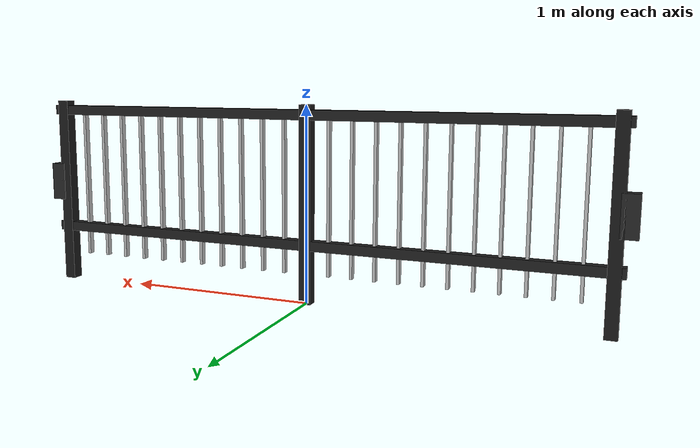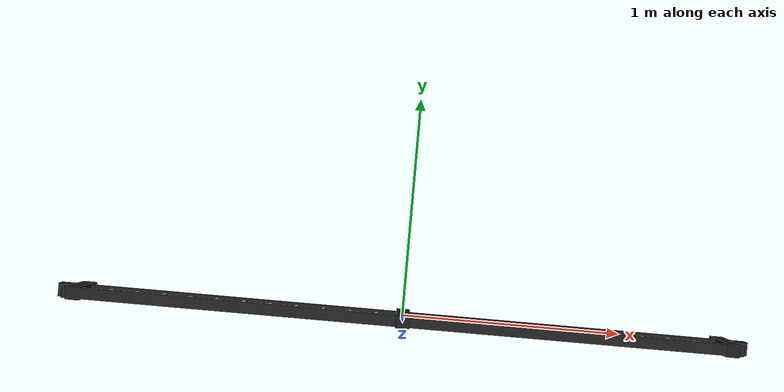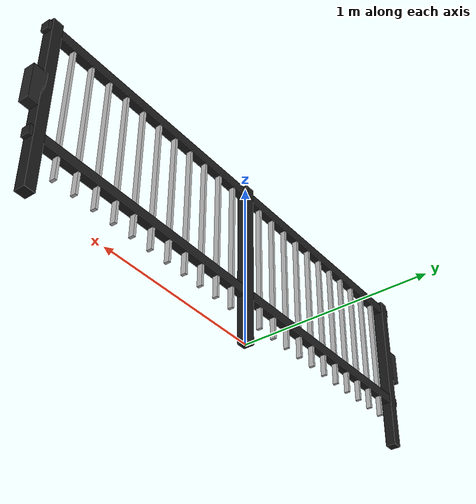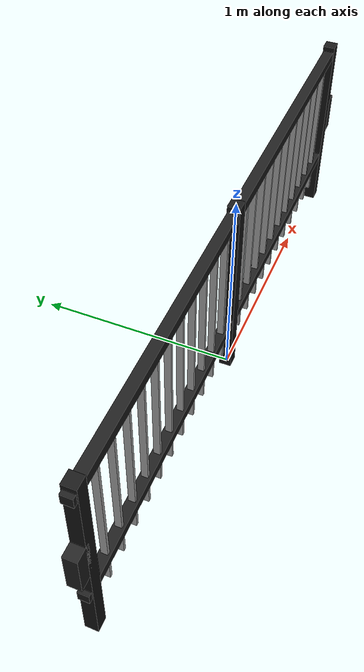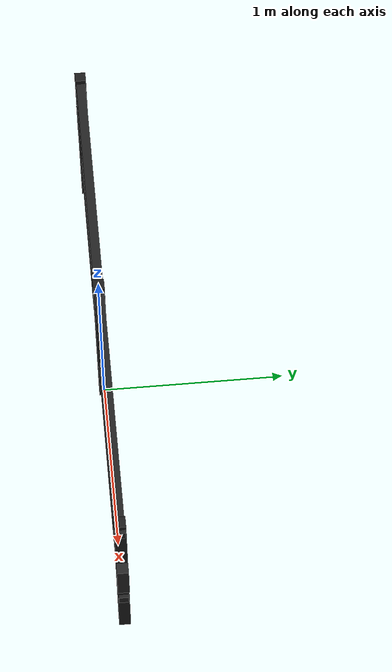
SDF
<?xml version="1.0"?>
<sdf version="1.7">
  <model name="guardrail_panel">
    <static>true</static>

    <link name="guardrail_link">
      <pose>0 0 0 0 0 0</pose>

      <collision name="col_top_rail">
        <pose>0 0 0.95 0 0 0</pose>
        <geometry>
          <box><size>3.00 0.05 0.05</size></box>
        </geometry>
        <surface>
          <friction>
            <ode>
              <mu>1.2</mu>
              <mu2>1.2</mu2>
            </ode>
          </friction>
          <contact>
            <ode>
              <kp>1000000</kp>
              <kd>10</kd>
            </ode>
          </contact>
        </surface>
      </collision>

      <collision name="col_bottom_rail">
        <pose>0 0 0.30 0 0 0</pose>
        <geometry>
          <box><size>3.00 0.05 0.05</size></box>
        </geometry>
      </collision>

      <collision name="col_post_left">
        <pose>-1.45 0 0.50 0 0 0</pose>
        <geometry>
          <box><size>0.06 0.06 1.00</size></box>
        </geometry>
      </collision>

      <collision name="col_post_mid">
        <pose>0 0 0.50 0 0 0</pose>
        <geometry>
          <box><size>0.06 0.06 1.00</size></box>
        </geometry>
      </collision>

      <collision name="col_post_right">
        <pose>1.45 0 0.50 0 0 0</pose>
        <geometry>
          <box><size>0.06 0.06 1.00</size></box>
        </geometry>
      </collision>

      <visual name="vis_top_rail">
        <pose>0 0 0.95 0 0 0</pose>
        <geometry><box><size>3.00 0.05 0.05</size></box></geometry>
        <material>
          <ambient>0.06 0.06 0.06 1</ambient>
          <diffuse>0.12 0.12 0.12 1</diffuse>
          <specular>0.20 0.20 0.20 1</specular>
          <emissive>0 0 0 1</emissive>
        </material>
      </visual>

      <visual name="vis_bottom_rail">
        <pose>0 0 0.30 0 0 0</pose>
        <geometry><box><size>3.00 0.05 0.05</size></box></geometry>
        <material>
          <ambient>0.06 0.06 0.06 1</ambient>
          <diffuse>0.12 0.12 0.12 1</diffuse>
          <specular>0.20 0.20 0.20 1</specular>
        </material>
      </visual>

      <visual name="vis_post_left">
        <pose>-1.45 0 0.50 0 0 0</pose>
        <geometry><box><size>0.06 0.06 1.00</size></box></geometry>
        <material>
          <ambient>0.05 0.05 0.05 1</ambient>
          <diffuse>0.10 0.10 0.10 1</diffuse>
        </material>
      </visual>
      <visual name="vis_post_mid">
        <pose>0 0 0.50 0 0 0</pose>
        <geometry><box><size>0.06 0.06 1.00</size></box></geometry>
        <material>
          <ambient>0.05 0.05 0.05 1</ambient>
          <diffuse>0.10 0.10 0.10 1</diffuse>
        </material>
      </visual>
      <visual name="vis_post_right">
        <pose>1.45 0 0.50 0 0 0</pose>
        <geometry><box><size>0.06 0.06 1.00</size></box></geometry>
        <material>
          <ambient>0.05 0.05 0.05 1</ambient>
          <diffuse>0.10 0.10 0.10 1</diffuse>
        </material>
      </visual>

      <visual name="vis_bar_01"><pose>-1.32 0 0.55 0 0 0</pose><geometry><box><size>0.015 0.03 0.80</size></box></geometry></visual>
      <visual name="vis_bar_02"><pose>-1.20 0 0.55 0 0 0</pose><geometry><box><size>0.015 0.03 0.80</size></box></geometry></visual>
      <visual name="vis_bar_03"><pose>-1.08 0 0.55 0 0 0</pose><geometry><box><size>0.015 0.03 0.80</size></box></geometry></visual>
      <visual name="vis_bar_04"><pose>-0.96 0 0.55 0 0 0</pose><geometry><box><size>0.015 0.03 0.80</size></box></geometry></visual>
      <visual name="vis_bar_05"><pose>-0.84 0 0.55 0 0 0</pose><geometry><box><size>0.015 0.03 0.80</size></box></geometry></visual>
      <visual name="vis_bar_06"><pose>-0.72 0 0.55 0 0 0</pose><geometry><box><size>0.015 0.03 0.80</size></box></geometry></visual>
      <visual name="vis_bar_07"><pose>-0.60 0 0.55 0 0 0</pose><geometry><box><size>0.015 0.03 0.80</size></box></geometry></visual>
      <visual name="vis_bar_08"><pose>-0.48 0 0.55 0 0 0</pose><geometry><box><size>0.015 0.03 0.80</size></box></geometry></visual>
      <visual name="vis_bar_09"><pose>-0.36 0 0.55 0 0 0</pose><geometry><box><size>0.015 0.03 0.80</size></box></geometry></visual>
      <visual name="vis_bar_10"><pose>-0.24 0 0.55 0 0 0</pose><geometry><box><size>0.015 0.03 0.80</size></box></geometry></visual>
      <visual name="vis_bar_11"><pose>-0.12 0 0.55 0 0 0</pose><geometry><box><size>0.015 0.03 0.80</size></box></geometry></visual>
      <visual name="vis_bar_12"><pose>0.00 0 0.55 0 0 0</pose><geometry><box><size>0.015 0.03 0.80</size></box></geometry></visual>
      <visual name="vis_bar_13"><pose>0.12 0 0.55 0 0 0</pose><geometry><box><size>0.015 0.03 0.80</size></box></geometry></visual>
      <visual name="vis_bar_14"><pose>0.24 0 0.55 0 0 0</pose><geometry><box><size>0.015 0.03 0.80</size></box></geometry></visual>
      <visual name="vis_bar_15"><pose>0.36 0 0.55 0 0 0</pose><geometry><box><size>0.015 0.03 0.80</size></box></geometry></visual>
      <visual name="vis_bar_16"><pose>0.48 0 0.55 0 0 0</pose><geometry><box><size>0.015 0.03 0.80</size></box></geometry></visual>
      <visual name="vis_bar_17"><pose>0.60 0 0.55 0 0 0</pose><geometry><box><size>0.015 0.03 0.80</size></box></geometry></visual>
      <visual name="vis_bar_18"><pose>0.72 0 0.55 0 0 0</pose><geometry><box><size>0.015 0.03 0.80</size></box></geometry></visual>
      <visual name="vis_bar_19"><pose>0.84 0 0.55 0 0 0</pose><geometry><box><size>0.015 0.03 0.80</size></box></geometry></visual>
      <visual name="vis_bar_20"><pose>0.96 0 0.55 0 0 0</pose><geometry><box><size>0.015 0.03 0.80</size></box></geometry></visual>
      <visual name="vis_bar_21"><pose>1.08 0 0.55 0 0 0</pose><geometry><box><size>0.015 0.03 0.80</size></box></geometry></visual>
      <visual name="vis_bar_22"><pose>1.20 0 0.55 0 0 0</pose><geometry><box><size>0.015 0.03 0.80</size></box></geometry></visual>
      <visual name="vis_bar_23"><pose>1.32 0 0.55 0 0 0</pose><geometry><box><size>0.015 0.03 0.80</size></box></geometry></visual>

      <visual name="vis_joint_left">
        <pose>-1.50 0 0.55 0 0 0</pose>
        <geometry><box><size>0.08 0.06 0.20</size></box></geometry>
        <material><diffuse>0.14 0.14 0.14 1</diffuse></material>
      </visual>

      <visual name="vis_joint_right">
        <pose>1.50 0 0.55 0 0 0</pose>
        <geometry><box><size>0.08 0.06 0.20</size></box></geometry>
        <material><diffuse>0.14 0.14 0.14 1</diffuse></material>
      </visual>

      <self_collide>false</self_collide>
      <enable_wind>false</enable_wind>
      <kinematic>false</kinematic>
    </link>
  </model>
</sdf>
